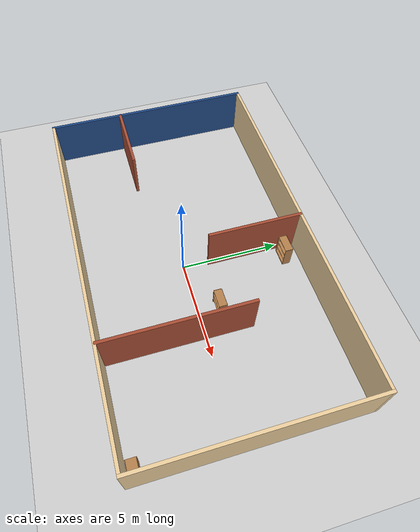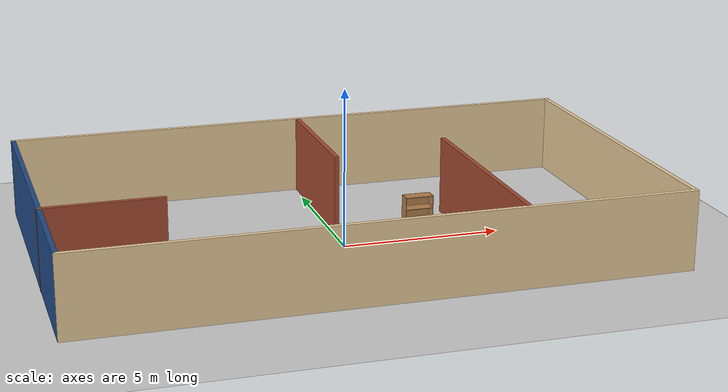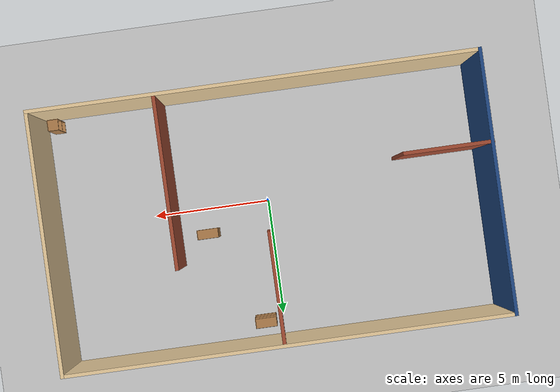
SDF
<sdf version="1.6">
 <world name="default">
  <plugin name="welcomeGazebo" filename="libwelcomeGazebo.so"/>
  <light name="sun" type="directional">
   <pose>0 0 10 0 -0 0</pose>
   <diffuse>0.8 0.8 0.8 1</diffuse>
   <specular>0.2 0.2 0.2 1</specular>
   <attenuation>
    <range>1000</range>
    <constant>0.9</constant>
    <linear>0.01</linear>
    <quadratic>0.001</quadratic>
   </attenuation>
   <direction>-0.5 0.1 -0.9</direction>
  </light>
  <model name="ground_plane">
   <static>1</static>
   <link name="link">
    <collision name="collision">
     <geometry><plane><normal>0 0 1</normal><size>100 100</size></plane></geometry>
     <surface>
      <contact><collide_bitmask>65535</collide_bitmask></contact>
      <friction><ode><mu>100</mu><mu2>50</mu2></ode></friction>
     </surface>
    </collision>
    <visual name="visual">
     <cast_shadows>0</cast_shadows>
     <geometry><plane><normal>0 0 1</normal><size>100 100</size></plane></geometry>
     <material>
      <script><uri>file://media/materials/scripts/gazebo.material</uri><name>Gazebo/Grey</name></script>
     </material>
    </visual>
   </link>
  </model>
  <gravity>0 0 -9.8</gravity>
  <magnetic_field>6e-06 2.3e-05 -4.2e-05</magnetic_field>
  <atmosphere type="adiabatic"/>
  <physics name="default_physics" default="0" type="ode">
   <max_step_size>0.001</max_step_size>
   <real_time_factor>1</real_time_factor>
   <real_time_update_rate>1000</real_time_update_rate>
  </physics>
  <scene><ambient>0.4 0.4 0.4 1</ambient><background>0.7 0.7 0.7 1</background><shadows>1</shadows></scene>
  <audio><device>default</device></audio>
  <spherical_coordinates>
   <surface_model>EARTH_WGS84</surface_model>
   <latitude_deg>0</latitude_deg>
   <longitude_deg>0</longitude_deg>
   <elevation>0</elevation>
   <heading_deg>0</heading_deg>
  </spherical_coordinates>
  <model name="Building_A">
   <pose>-0.05863 0.547242 0 0 -0 0</pose>
   <link name="Wall_0">
    <collision name="Wall_0_Collision">
     <geometry><box><size>11 0.15 2.5</size></box></geometry>
     <pose>0 0 1.25 0 -0 0</pose>
    </collision>
    <visual name="Wall_0_Visual">
     <pose>0 0 1.25 0 -0 0</pose>
     <geometry><box><size>11 0.15 2.5</size></box></geometry>
     <material>
      <script><uri>file://media/materials/scripts/gazebo.material</uri><name>Gazebo/Grey</name></script>
      <ambient>0.12549 0.290196 0.529412 1</ambient>
     </material>
     <meta><layer>0</layer></meta>
    </visual>
    <pose>-9.295 -0 0 0 -0 -1.5708</pose>
   </link>
   <link name="Wall_1">
    <collision name="Wall_1_Collision">
     <geometry><box><size>18.75 0.15 2.5</size></box></geometry>
     <pose>0 0 1.25 0 -0 0</pose>
    </collision>
    <visual name="Wall_1_Visual">
     <pose>0 0 1.25 0 -0 0</pose>
     <geometry><box><size>18.75 0.15 2.5</size></box></geometry>
     <material>
      <script><uri>file://media/materials/scripts/gazebo.material</uri><name>Gazebo/Grey</name></script>
      <ambient>0.921569 0.807843 0.615686 1</ambient>
     </material>
     <meta><layer>0</layer></meta>
    </visual>
    <pose>0.005 -5.425 0 0 -0 0</pose>
   </link>
   <link name="Wall_2">
    <collision name="Wall_2_Collision">
     <geometry><box><size>11 0.15 2.5</size></box></geometry>
     <pose>0 0 1.25 0 -0 0</pose>
    </collision>
    <visual name="Wall_2_Visual">
     <pose>0 0 1.25 0 -0 0</pose>
     <geometry><box><size>11 0.15 2.5</size></box></geometry>
     <material>
      <script><uri>file://media/materials/scripts/gazebo.material</uri><name>Gazebo/Grey</name></script>
      <ambient>0.921569 0.807843 0.615686 1</ambient>
     </material>
     <meta><layer>0</layer></meta>
    </visual>
    <pose>9.305 -0 0 0 -0 1.5708</pose>
   </link>
   <link name="Wall_3">
    <collision name="Wall_3_Collision">
     <geometry><box><size>18.75 0.15 2.5</size></box></geometry>
     <pose>0 0 1.25 0 -0 0</pose>
    </collision>
    <visual name="Wall_3_Visual">
     <pose>0 0 1.25 0 -0 0</pose>
     <geometry><box><size>18.75 0.15 2.5</size></box></geometry>
     <material>
      <script><uri>file://media/materials/scripts/gazebo.material</uri><name>Gazebo/Grey</name></script>
      <ambient>0.921569 0.807843 0.615686 1</ambient>
     </material>
     <meta><layer>0</layer></meta>
    </visual>
    <pose>0.005 5.425 0 0 -0 3.14159</pose>
   </link>
   <link name="Wall_5">
    <collision name="Wall_5_Collision">
     <geometry><box><size>4.75 0.15 2.5</size></box></geometry>
     <pose>0 0 1.25 0 -0 0</pose>
    </collision>
    <visual name="Wall_5_Visual">
     <pose>0 0 1.25 0 -0 0</pose>
     <geometry><box><size>4.75 0.15 2.5</size></box></geometry>
     <material>
      <script><uri>file://media/materials/scripts/gazebo.material</uri><name>Gazebo/Bricks</name></script>
      <ambient>1 1 1 1</ambient>
     </material>
     <meta><layer>0</layer></meta>
    </visual>
    <pose>0.185 3.095 0 0 -0 -1.5708</pose>
   </link>
   <link name="Wall_7">
    <collision name="Wall_7_Collision">
     <geometry><box><size>7.25 0.15 2.5</size></box></geometry>
     <pose>0 0 1.25 0 -0 0</pose>
    </collision>
    <visual name="Wall_7_Visual">
     <pose>0 0 1.25 0 -0 0</pose>
     <geometry><box><size>7.25 0.15 2.5</size></box></geometry>
     <material>
      <script><uri>file://media/materials/scripts/gazebo.material</uri><name>Gazebo/Bricks</name></script>
      <ambient>1 1 1 1</ambient>
     </material>
     <meta><layer>0</layer></meta>
    </visual>
    <pose>4.095 -1.825 0 0 -0 -1.5708</pose>
   </link>
   <link name="Wall_9">
    <collision name="Wall_9_Collision">
     <geometry><box><size>3.75 0.15 2.5</size></box></geometry>
     <pose>0 0 1.25 0 -0 0</pose>
    </collision>
    <visual name="Wall_9_Visual">
     <pose>0 0 1.25 0 -0 0</pose>
     <geometry><box><size>3.75 0.15 2.5</size></box></geometry>
     <material>
      <script><uri>file://media/materials/scripts/gazebo.material</uri><name>Gazebo/Bricks</name></script>
      <ambient>1 1 1 1</ambient>
     </material>
     <meta><layer>0</layer></meta>
    </visual>
    <pose>-7.505 -1.645 0 0 -0 0</pose>
   </link>
   <static>1</static>
  </model>
  <model name="bookshelf">
   <static>1</static>
   <link name="link">
    <inertial><mass>1</mass></inertial>
    <collision name="back">
     <pose>0 0.005 0.6 0 -0 0</pose>
     <geometry><box><size>0.9 0.01 1.2</size></box></geometry>
    </collision>
    <visual name="visual1">
     <pose>0 0.005 0.6 0 -0 0</pose>
     <geometry><box><size>0.9 0.01 1.2</size></box></geometry>
     <material>
      <script><uri>file://media/materials/scripts/gazebo.material</uri><name>Gazebo/Wood</name></script>
     </material>
    </visual>
    <collision name="left_side">
     <pose>0.45 -0.195 0.6 0 -0 0</pose>
     <geometry><box><size>0.02 0.4 1.2</size></box></geometry>
    </collision>
    <visual name="visual2">
     <pose>0.45 -0.195 0.6 0 -0 0</pose>
     <geometry><box><size>0.02 0.4 1.2</size></box></geometry>
     <material>
      <script><uri>file://media/materials/scripts/gazebo.material</uri><name>Gazebo/Wood</name></script>
     </material>
    </visual>
    <collision name="right_side">
     <pose>-0.45 -0.195 0.6 0 -0 0</pose>
     <geometry><box><size>0.02 0.4 1.2</size></box></geometry>
    </collision>
    <visual name="visual3">
     <pose>-0.45 -0.195 0.6 0 -0 0</pose>
     <geometry><box><size>0.02 0.4 1.2</size></box></geometry>
     <material>
      <script><uri>file://media/materials/scripts/gazebo.material</uri><name>Gazebo/Wood</name></script>
     </material>
    </visual>
    <collision name="bottom">
     <pose>0 -0.195 0.03 0 -0 0</pose>
     <geometry><box><size>0.88 0.4 0.06</size></box></geometry>
    </collision>
    <visual name="visual4">
     <pose>0 -0.195 0.03 0 -0 0</pose>
     <geometry><box><size>0.88 0.4 0.06</size></box></geometry>
     <material>
      <script><uri>file://media/materials/scripts/gazebo.material</uri><name>Gazebo/Wood</name></script>
     </material>
    </visual>
    <collision name="top">
     <pose>0 -0.195 1.19 0 -0 0</pose>
     <geometry><box><size>0.88 0.4 0.02</size></box></geometry>
    </collision>
    <visual name="visual5">
     <pose>0 -0.195 1.19 0 -0 0</pose>
     <geometry><box><size>0.88 0.4 0.02</size></box></geometry>
     <material>
      <script><uri>file://media/materials/scripts/gazebo.material</uri><name>Gazebo/Wood</name></script>
     </material>
    </visual>
    <collision name="low_shelf">
     <pose>0 -0.195 0.43 0 -0 0</pose>
     <geometry><box><size>0.88 0.4 0.02</size></box></geometry>
    </collision>
    <visual name="visual6">
     <pose>0 -0.195 0.43 0 -0 0</pose>
     <geometry><box><size>0.88 0.4 0.02</size></box></geometry>
     <material>
      <script><uri>file://media/materials/scripts/gazebo.material</uri><name>Gazebo/Wood</name></script>
     </material>
    </visual>
    <collision name="high_shelf">
     <pose>0 -0.195 0.8 0 -0 0</pose>
     <geometry><box><size>0.88 0.4 0.02</size></box></geometry>
    </collision>
    <visual name="visual7">
     <pose>0 -0.195 0.8 0 -0 0</pose>
     <geometry><box><size>0.88 0.4 0.02</size></box></geometry>
     <material>
      <script><uri>file://media/materials/scripts/gazebo.material</uri><name>Gazebo/Wood</name></script>
     </material>
    </visual>
   </link>
   <pose>0.783037 5.3376 0 0 -0 0</pose>
  </model>
  <model name="bookshelf_0">
   <static>1</static>
   <link name="link">
    <inertial><mass>1</mass></inertial>
    <collision name="back">
     <pose>0 0.005 0.6 0 -0 0</pose>
     <geometry><box><size>0.9 0.01 1.2</size></box></geometry>
    </collision>
    <visual name="visual1">
     <pose>0 0.005 0.6 0 -0 0</pose>
     <geometry><box><size>0.9 0.01 1.2</size></box></geometry>
     <material>
      <script><uri>file://media/materials/scripts/gazebo.material</uri><name>Gazebo/Wood</name></script>
     </material>
    </visual>
    <collision name="left_side">
     <pose>0.45 -0.195 0.6 0 -0 0</pose>
     <geometry><box><size>0.02 0.4 1.2</size></box></geometry>
    </collision>
    <visual name="visual2">
     <pose>0.45 -0.195 0.6 0 -0 0</pose>
     <geometry><box><size>0.02 0.4 1.2</size></box></geometry>
     <material>
      <script><uri>file://media/materials/scripts/gazebo.material</uri><name>Gazebo/Wood</name></script>
     </material>
    </visual>
    <collision name="right_side">
     <pose>-0.45 -0.195 0.6 0 -0 0</pose>
     <geometry><box><size>0.02 0.4 1.2</size></box></geometry>
    </collision>
    <visual name="visual3">
     <pose>-0.45 -0.195 0.6 0 -0 0</pose>
     <geometry><box><size>0.02 0.4 1.2</size></box></geometry>
     <material>
      <script><uri>file://media/materials/scripts/gazebo.material</uri><name>Gazebo/Wood</name></script>
     </material>
    </visual>
    <collision name="bottom">
     <pose>0 -0.195 0.03 0 -0 0</pose>
     <geometry><box><size>0.88 0.4 0.06</size></box></geometry>
    </collision>
    <visual name="visual4">
     <pose>0 -0.195 0.03 0 -0 0</pose>
     <geometry><box><size>0.88 0.4 0.06</size></box></geometry>
     <material>
      <script><uri>file://media/materials/scripts/gazebo.material</uri><name>Gazebo/Wood</name></script>
     </material>
    </visual>
    <collision name="top">
     <pose>0 -0.195 1.19 0 -0 0</pose>
     <geometry><box><size>0.88 0.4 0.02</size></box></geometry>
    </collision>
    <visual name="visual5">
     <pose>0 -0.195 1.19 0 -0 0</pose>
     <geometry><box><size>0.88 0.4 0.02</size></box></geometry>
     <material>
      <script><uri>file://media/materials/scripts/gazebo.material</uri><name>Gazebo/Wood</name></script>
     </material>
    </visual>
    <collision name="low_shelf">
     <pose>0 -0.195 0.43 0 -0 0</pose>
     <geometry><box><size>0.88 0.4 0.02</size></box></geometry>
    </collision>
    <visual name="visual6">
     <pose>0 -0.195 0.43 0 -0 0</pose>
     <geometry><box><size>0.88 0.4 0.02</size></box></geometry>
     <material>
      <script><uri>file://media/materials/scripts/gazebo.material</uri><name>Gazebo/Wood</name></script>
     </material>
    </visual>
    <collision name="high_shelf">
     <pose>0 -0.195 0.8 0 -0 0</pose>
     <geometry><box><size>0.88 0.4 0.02</size></box></geometry>
    </collision>
    <visual name="visual7">
     <pose>0 -0.195 0.8 0 -0 0</pose>
     <geometry><box><size>0.88 0.4 0.02</size></box></geometry>
     <material>
      <script><uri>file://media/materials/scripts/gazebo.material</uri><name>Gazebo/Wood</name></script>
     </material>
    </visual>
   </link>
   <pose>2.74796 1.26281 -0.136568 0 -0 0</pose>
  </model>
  <model name="cabinet">
   <static>1</static>
   <link name="cabinet_bottom_plate">
    <inertial>
     <pose>0 0 -1 0 -0 0</pose>
     <inertia><ixx>2.05</ixx><ixy>0</ixy><ixz>0</ixz><iyy>2.05</iyy><iyz>0</iyz><izz>2.05</izz></inertia>
     <mass>25</mass>
    </inertial>
    <collision name="cabinet_bottom_plate_geom">
     <pose>0 0 0.01 0 -0 0</pose>
     <geometry><box><size>0.45 0.45 0.02</size></box></geometry>
    </collision>
    <visual name="cabinet_bottom_plate_geom_visual">
     <pose>0 0 0.01 0 -0 0</pose>
     <geometry><box><size>0.45 0.45 0.02</size></box></geometry>
     <material>
      <script><uri>file://media/materials/scripts/gazebo.material</uri><name>Gazebo/Wood</name></script>
     </material>
    </visual>
    <collision name="cabinet_bottom_plate_geom_cabinet_back_plate">
     <pose>0.235 0 0.51 0 -0 0</pose>
     <geometry><box><size>0.02 0.45 1.02</size></box></geometry>
    </collision>
    <visual name="cabinet_bottom_plate_geom_cabinet_back_plate_visual">
     <pose>0.235 0 0.51 0 -0 0</pose>
     <geometry><box><size>0.02 0.45 1.02</size></box></geometry>
     <material>
      <script><uri>file://media/materials/scripts/gazebo.material</uri><name>Gazebo/Wood</name></script>
     </material>
    </visual>
    <collision name="cabinet_bottom_plate_geom_cabinet_left_plate">
     <pose>0 0.235 0.51 0 -0 0</pose>
     <geometry><box><size>0.45 0.02 1.02</size></box></geometry>
    </collision>
    <visual name="cabinet_bottom_plate_geom_cabinet_left_plate_visual">
     <pose>0 0.235 0.51 0 -0 0</pose>
     <geometry><box><size>0.45 0.02 1.02</size></box></geometry>
     <material>
      <script><uri>file://media/materials/scripts/gazebo.material</uri><name>Gazebo/Wood</name></script>
     </material>
    </visual>
    <collision name="cabinet_bottom_plate_geom_cabinet_middle_plate">
     <pose>0 0 0.51 0 -0 0</pose>
     <geometry><box><size>0.45 0.45 0.02</size></box></geometry>
    </collision>
    <visual name="cabinet_bottom_plate_geom_cabinet_middle_plate_visual">
     <pose>0 0 0.51 0 -0 0</pose>
     <geometry><box><size>0.45 0.45 0.02</size></box></geometry>
     <material>
      <script><uri>file://media/materials/scripts/gazebo.material</uri><name>Gazebo/Wood</name></script>
     </material>
    </visual>
    <collision name="cabinet_bottom_plate_geom_cabinet_right_plate">
     <pose>0 -0.235 0.51 0 -0 0</pose>
     <geometry><box><size>0.45 0.02 1.02</size></box></geometry>
    </collision>
    <visual name="cabinet_bottom_plate_geom_cabinet_right_plate_visual">
     <pose>0 -0.235 0.51 0 -0 0</pose>
     <geometry><box><size>0.45 0.02 1.02</size></box></geometry>
     <material>
      <script><uri>file://media/materials/scripts/gazebo.material</uri><name>Gazebo/Wood</name></script>
     </material>
    </visual>
    <collision name="cabinet_bottom_plate_geom_cabinet_top_plate">
     <pose>0 0 1.01 0 -0 0</pose>
     <geometry><box><size>0.45 0.45 0.02</size></box></geometry>
    </collision>
    <visual name="cabinet_bottom_plate_geom_cabinet_top_plate_visual">
     <pose>0 0 1.01 0 -0 0</pose>
     <geometry><box><size>0.45 0.45 0.02</size></box></geometry>
     <material>
      <script><uri>file://media/materials/scripts/gazebo.material</uri><name>Gazebo/Wood</name></script>
     </material>
    </visual>
   </link>
   <pose>8.67837 -4.45429 0 0 -0 0</pose>
  </model>
  <plugin name="collision_map_creator" filename="libcollision_map_creator.so"/>
 </world>
</sdf>
